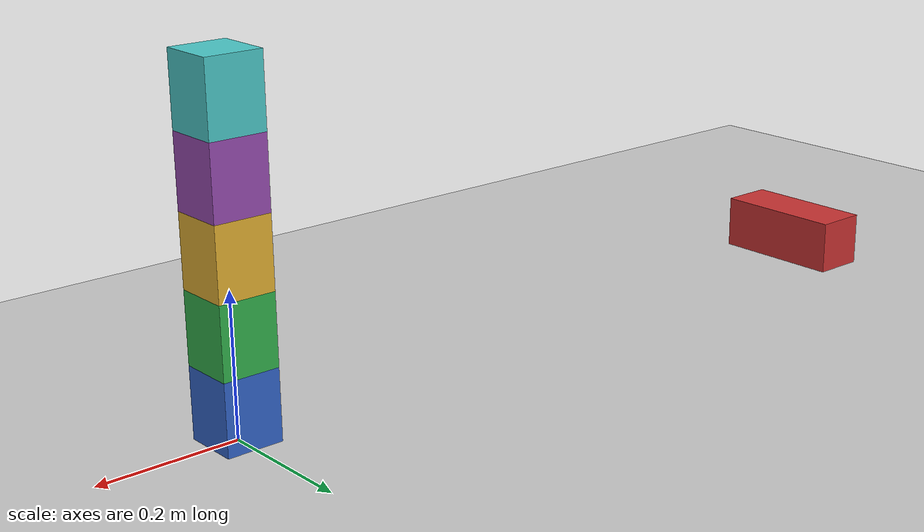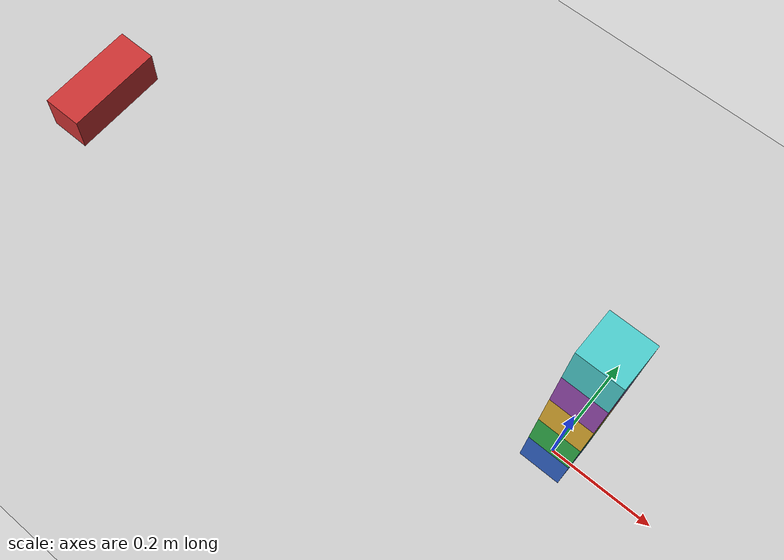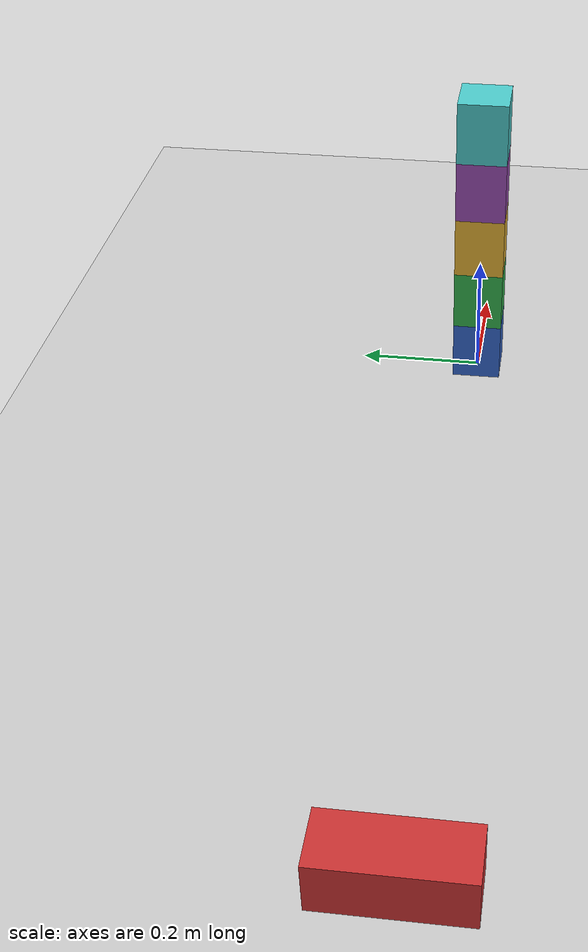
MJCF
<mujoco model="toppling_stack">
  <option timestep="0.002" gravity="0 0 -9.81"/>

  <worldbody>
    <light name="sun" pos="0 0 3" dir="0 0 -1" diffuse="0.8 0.8 0.8"/>
    <geom name="floor" type="plane" size="3 3 0.1" friction="0.8 0.005 0.0001" rgba="0.8 0.8 0.8 1"/>

    <!-- Pusher (ram): slides along +x, starts 1 m from the stack, hits block1 at about t = 1 s, stops at the joint limit -->
    <body name="pusher" pos="-1.08 0 0.05">
      <joint name="pusher_slide" type="slide" axis="1 0 0" limited="true" range="0 1.2" damping="0"/>
      <geom name="pusher_geom" type="box" size="0.04 0.1 0.04" mass="3" friction="0.3 0.005 0.0001" rgba="0.8 0.2 0.2 1"/>
    </body>

    <!-- Stack of five 0.08 x 0.08 x 0.10 m blocks -->
    <body name="block1" pos="0 0 0.05">
      <freejoint name="block1_free"/>
      <geom name="block1_geom" type="box" size="0.04 0.04 0.05" density="600" friction="0.8 0.005 0.0001" rgba="0.2 0.4 0.8 1"/>
    </body>
    <body name="block2" pos="0 0 0.15">
      <freejoint name="block2_free"/>
      <geom name="block2_geom" type="box" size="0.04 0.04 0.05" density="600" friction="0.8 0.005 0.0001" rgba="0.2 0.7 0.3 1"/>
    </body>
    <body name="block3" pos="0 0 0.25">
      <freejoint name="block3_free"/>
      <geom name="block3_geom" type="box" size="0.04 0.04 0.05" density="600" friction="0.8 0.005 0.0001" rgba="0.9 0.7 0.2 1"/>
    </body>
    <body name="block4" pos="0 0 0.35">
      <freejoint name="block4_free"/>
      <geom name="block4_geom" type="box" size="0.04 0.04 0.05" density="600" friction="0.8 0.005 0.0001" rgba="0.6 0.3 0.7 1"/>
    </body>
    <body name="block5" pos="0 0 0.45">
      <freejoint name="block5_free"/>
      <geom name="block5_geom" type="box" size="0.04 0.04 0.05" density="600" friction="0.8 0.005 0.0001" rgba="0.3 0.8 0.8 1"/>
    </body>
  </worldbody>

  <keyframe>
    <key name="start" qpos="0  0 0 0.05 1 0 0 0  0 0 0.15 1 0 0 0  0 0 0.25 1 0 0 0  0 0 0.35 1 0 0 0  0 0 0.45 1 0 0 0" qvel="1.0  0 0 0 0 0 0  0 0 0 0 0 0  0 0 0 0 0 0  0 0 0 0 0 0  0 0 0 0 0 0"/>
  </keyframe>
</mujoco>
